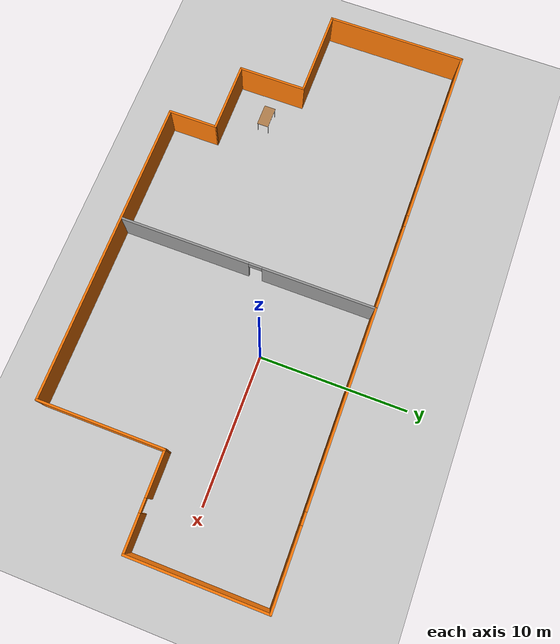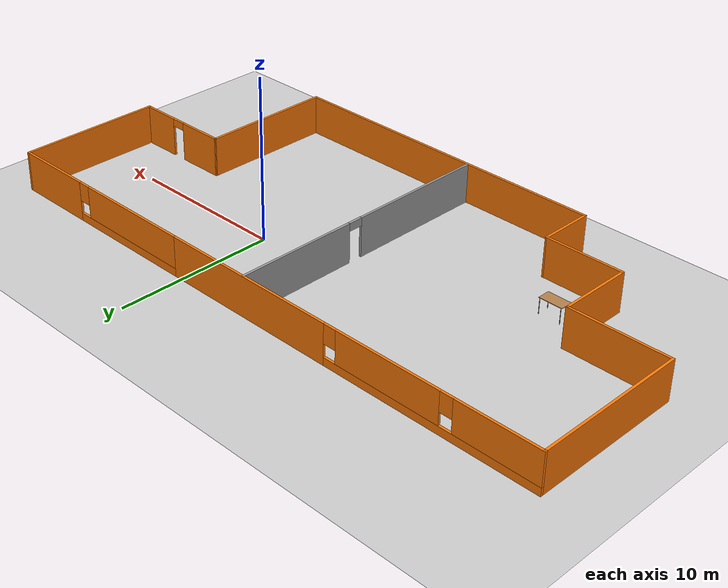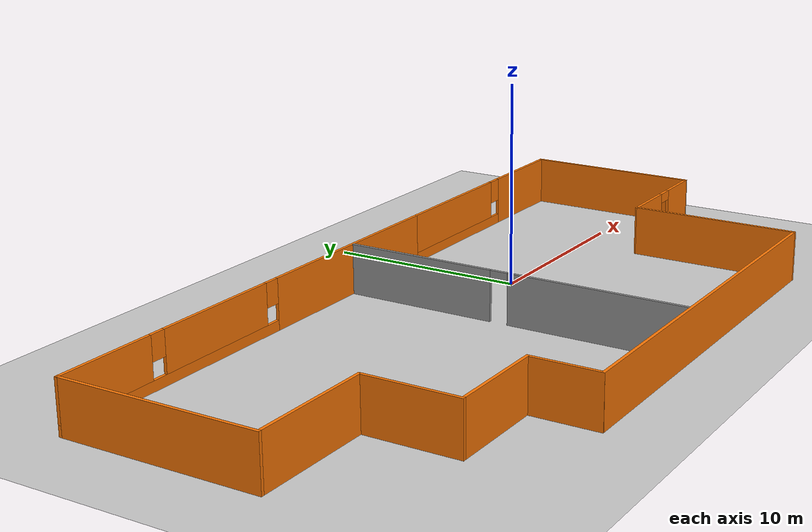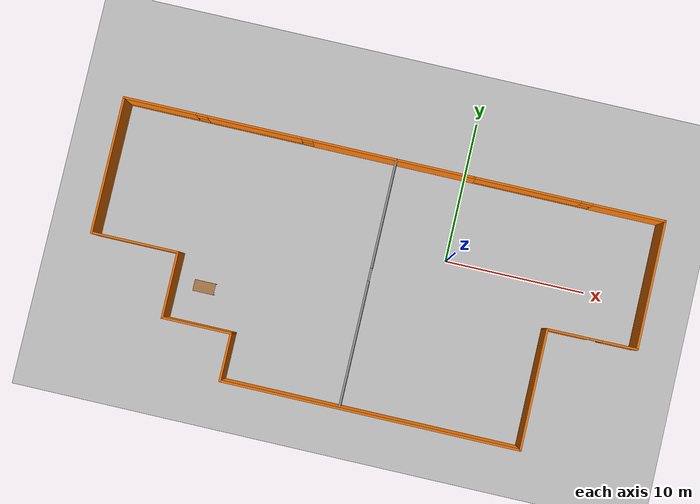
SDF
<sdf version="1.6">
 <world name="default">
  <model name="ground_plane">
   <static>1</static>
   <link name="link">
    <collision name="collision">
     <geometry><plane><normal>0 0 1</normal><size>100 100</size></plane></geometry>
     <surface><friction><ode><mu>100</mu><mu2>50</mu2></ode></friction></surface>
    </collision>
    <visual name="visual">
     <cast_shadows>0</cast_shadows>
     <geometry><plane><normal>0 0 1</normal><size>100 100</size></plane></geometry>
     <material>
      <script><uri>file://media/materials/scripts/gazebo.material</uri><name>Gazebo/Grey</name></script>
     </material>
    </visual>
   </link>
  </model>
  <model name="Building">
   <link name="Wall_0">
    <pose>-6.7329 8.76145 0 0 -0 3.14159</pose>
    <visual name="Wall_0_Visual_5">
     <pose>6.91914 0 1.9 0 -0 0</pose>
     <geometry><box><size>0.8 0.15 1.2</size></box></geometry>
     <material>
      <script><uri>file://media/materials/scripts/gazebo.material</uri><name>Gazebo/Grey</name></script>
      <ambient>0.996078 0.47451 0.0196078 1</ambient>
      <shader type="pixel"/>
      <diffuse>0.7 0.7 0.7 1</diffuse>
      <specular>0.01 0.01 0.01 1</specular>
      <emissive>0 0 0 1</emissive>
     </material>
     <meta><layer>0</layer></meta>
    </visual>
    <visual name="Wall_0_Visual_0">
     <pose>-6.73561 0 1.25 0 -0 0</pose>
     <geometry><box><size>11.5288 0.15 2.5</size></box></geometry>
     <material>
      <script><uri>file://media/materials/scripts/gazebo.material</uri><name>Gazebo/Grey</name></script>
      <ambient>0.996078 0.47451 0.0196078 1</ambient>
      <shader type="pixel"/>
      <diffuse>0.7 0.7 0.7 1</diffuse>
      <specular>0.01 0.01 0.01 1</specular>
      <emissive>0 0 0 1</emissive>
     </material>
     <meta><layer>0</layer></meta>
    </visual>
    <visual name="Wall_0_Visual_2">
     <pose>3.17396 0 1.5 0 -0 0</pose>
     <geometry><box><size>6.69035 0.15 2</size></box></geometry>
     <material>
      <script><uri>file://media/materials/scripts/gazebo.material</uri><name>Gazebo/Grey</name></script>
      <ambient>0.996078 0.47451 0.0196078 1</ambient>
      <shader type="pixel"/>
      <diffuse>0.7 0.7 0.7 1</diffuse>
      <specular>0.01 0.01 0.01 1</specular>
      <emissive>0 0 0 1</emissive>
     </material>
     <meta><layer>0</layer></meta>
    </visual>
    <visual name="Wall_0_Visual_1">
     <pose>5.76439 0 0.25 0 -0 0</pose>
     <geometry><box><size>13.4712 0.15 0.5</size></box></geometry>
     <material>
      <script><uri>file://media/materials/scripts/gazebo.material</uri><name>Gazebo/Grey</name></script>
      <ambient>0.996078 0.47451 0.0196078 1</ambient>
      <shader type="pixel"/>
      <diffuse>0.7 0.7 0.7 1</diffuse>
      <specular>0.01 0.01 0.01 1</specular>
      <emissive>0 0 0 1</emissive>
     </material>
     <meta><layer>0</layer></meta>
    </visual>
    <visual name="Wall_0_Visual_3">
     <pose>9.90957 0 1.5 0 -0 0</pose>
     <geometry><box><size>5.18086 0.15 2</size></box></geometry>
     <material>
      <script><uri>file://media/materials/scripts/gazebo.material</uri><name>Gazebo/Grey</name></script>
      <ambient>0.996078 0.47451 0.0196078 1</ambient>
      <shader type="pixel"/>
      <diffuse>0.7 0.7 0.7 1</diffuse>
      <specular>0.01 0.01 0.01 1</specular>
      <emissive>0 0 0 1</emissive>
     </material>
     <meta><layer>0</layer></meta>
    </visual>
    <visual name="Wall_0_Visual_4">
     <pose>-0.571214 0 1.9 0 -0 0</pose>
     <geometry><box><size>0.8 0.15 1.2</size></box></geometry>
     <material>
      <script><uri>file://media/materials/scripts/gazebo.material</uri><name>Gazebo/Grey</name></script>
      <ambient>0.996078 0.47451 0.0196078 1</ambient>
      <shader type="pixel"/>
      <diffuse>0.7 0.7 0.7 1</diffuse>
      <specular>0.01 0.01 0.01 1</specular>
      <emissive>0 0 0 1</emissive>
     </material>
     <meta><layer>0</layer></meta>
    </visual>
    <collision name="Wall_0_Collision_5">
     <pose>6.91914 0 1.9 0 -0 0</pose>
     <geometry><box><size>0.8 0.15 1.2</size></box></geometry>
     <surface>
      <friction>
       <ode><mu>1</mu><mu2>1</mu2><fdir1>0 0 0</fdir1><slip1>0</slip1><slip2>0</slip2></ode>
       <torsional>
        <coefficient>1</coefficient>
        <patch_radius>0</patch_radius>
        <surface_radius>0</surface_radius>
        <use_patch_radius>1</use_patch_radius>
        <ode><slip>0</slip></ode>
       </torsional>
      </friction>
      <bounce><restitution_coefficient>0</restitution_coefficient><threshold>1e+06</threshold></bounce>
      <contact>
       <collide_without_contact>0</collide_without_contact>
       <collide_without_contact_bitmask>1</collide_without_contact_bitmask>
       <collide_bitmask>1</collide_bitmask>
       <ode>
        <soft_cfm>0</soft_cfm>
        <soft_erp>0.2</soft_erp>
        <kp>1e+13</kp>
        <kd>1</kd>
        <max_vel>0.01</max_vel>
        <min_depth>0</min_depth>
       </ode>
       <bullet>
        <split_impulse>1</split_impulse>
        <split_impulse_penetration_threshold>-0.01</split_impulse_penetration_threshold>
        <soft_cfm>0</soft_cfm>
        <soft_erp>0.2</soft_erp>
        <kp>1e+13</kp>
        <kd>1</kd>
       </bullet>
      </contact>
     </surface>
    </collision>
    <collision name="Wall_0_Collision_3">
     <pose>9.90957 0 1.5 0 -0 0</pose>
     <geometry><box><size>5.18086 0.15 2</size></box></geometry>
     <surface>
      <friction>
       <ode><mu>1</mu><mu2>1</mu2><fdir1>0 0 0</fdir1><slip1>0</slip1><slip2>0</slip2></ode>
       <torsional>
        <coefficient>1</coefficient>
        <patch_radius>0</patch_radius>
        <surface_radius>0</surface_radius>
        <use_patch_radius>1</use_patch_radius>
        <ode><slip>0</slip></ode>
       </torsional>
      </friction>
      <bounce><restitution_coefficient>0</restitution_coefficient><threshold>1e+06</threshold></bounce>
      <contact>
       <collide_without_contact>0</collide_without_contact>
       <collide_without_contact_bitmask>1</collide_without_contact_bitmask>
       <collide_bitmask>1</collide_bitmask>
       <ode>
        <soft_cfm>0</soft_cfm>
        <soft_erp>0.2</soft_erp>
        <kp>1e+13</kp>
        <kd>1</kd>
        <max_vel>0.01</max_vel>
        <min_depth>0</min_depth>
       </ode>
       <bullet>
        <split_impulse>1</split_impulse>
        <split_impulse_penetration_threshold>-0.01</split_impulse_penetration_threshold>
        <soft_cfm>0</soft_cfm>
        <soft_erp>0.2</soft_erp>
        <kp>1e+13</kp>
        <kd>1</kd>
       </bullet>
      </contact>
     </surface>
    </collision>
    <collision name="Wall_0_Collision_2">
     <pose>3.17396 0 1.5 0 -0 0</pose>
     <geometry><box><size>6.69035 0.15 2</size></box></geometry>
     <surface>
      <friction>
       <ode><mu>1</mu><mu2>1</mu2><fdir1>0 0 0</fdir1><slip1>0</slip1><slip2>0</slip2></ode>
       <torsional>
        <coefficient>1</coefficient>
        <patch_radius>0</patch_radius>
        <surface_radius>0</surface_radius>
        <use_patch_radius>1</use_patch_radius>
        <ode><slip>0</slip></ode>
       </torsional>
      </friction>
      <bounce><restitution_coefficient>0</restitution_coefficient><threshold>1e+06</threshold></bounce>
      <contact>
       <collide_without_contact>0</collide_without_contact>
       <collide_without_contact_bitmask>1</collide_without_contact_bitmask>
       <collide_bitmask>1</collide_bitmask>
       <ode>
        <soft_cfm>0</soft_cfm>
        <soft_erp>0.2</soft_erp>
        <kp>1e+13</kp>
        <kd>1</kd>
        <max_vel>0.01</max_vel>
        <min_depth>0</min_depth>
       </ode>
       <bullet>
        <split_impulse>1</split_impulse>
        <split_impulse_penetration_threshold>-0.01</split_impulse_penetration_threshold>
        <soft_cfm>0</soft_cfm>
        <soft_erp>0.2</soft_erp>
        <kp>1e+13</kp>
        <kd>1</kd>
       </bullet>
      </contact>
     </surface>
    </collision>
    <collision name="Wall_0_Collision_4">
     <pose>-0.571214 0 1.9 0 -0 0</pose>
     <geometry><box><size>0.8 0.15 1.2</size></box></geometry>
     <surface>
      <friction>
       <ode><mu>1</mu><mu2>1</mu2><fdir1>0 0 0</fdir1><slip1>0</slip1><slip2>0</slip2></ode>
       <torsional>
        <coefficient>1</coefficient>
        <patch_radius>0</patch_radius>
        <surface_radius>0</surface_radius>
        <use_patch_radius>1</use_patch_radius>
        <ode><slip>0</slip></ode>
       </torsional>
      </friction>
      <bounce><restitution_coefficient>0</restitution_coefficient><threshold>1e+06</threshold></bounce>
      <contact>
       <collide_without_contact>0</collide_without_contact>
       <collide_without_contact_bitmask>1</collide_without_contact_bitmask>
       <collide_bitmask>1</collide_bitmask>
       <ode>
        <soft_cfm>0</soft_cfm>
        <soft_erp>0.2</soft_erp>
        <kp>1e+13</kp>
        <kd>1</kd>
        <max_vel>0.01</max_vel>
        <min_depth>0</min_depth>
       </ode>
       <bullet>
        <split_impulse>1</split_impulse>
        <split_impulse_penetration_threshold>-0.01</split_impulse_penetration_threshold>
        <soft_cfm>0</soft_cfm>
        <soft_erp>0.2</soft_erp>
        <kp>1e+13</kp>
        <kd>1</kd>
       </bullet>
      </contact>
     </surface>
    </collision>
    <collision name="Wall_0_Collision_0">
     <pose>-6.73561 0 1.25 0 -0 0</pose>
     <geometry><box><size>11.5288 0.15 2.5</size></box></geometry>
     <surface>
      <friction>
       <ode><mu>1</mu><mu2>1</mu2><fdir1>0 0 0</fdir1><slip1>0</slip1><slip2>0</slip2></ode>
       <torsional>
        <coefficient>1</coefficient>
        <patch_radius>0</patch_radius>
        <surface_radius>0</surface_radius>
        <use_patch_radius>1</use_patch_radius>
        <ode><slip>0</slip></ode>
       </torsional>
      </friction>
      <bounce><restitution_coefficient>0</restitution_coefficient><threshold>1e+06</threshold></bounce>
      <contact>
       <collide_without_contact>0</collide_without_contact>
       <collide_without_contact_bitmask>1</collide_without_contact_bitmask>
       <collide_bitmask>1</collide_bitmask>
       <ode>
        <soft_cfm>0</soft_cfm>
        <soft_erp>0.2</soft_erp>
        <kp>1e+13</kp>
        <kd>1</kd>
        <max_vel>0.01</max_vel>
        <min_depth>0</min_depth>
       </ode>
       <bullet>
        <split_impulse>1</split_impulse>
        <split_impulse_penetration_threshold>-0.01</split_impulse_penetration_threshold>
        <soft_cfm>0</soft_cfm>
        <soft_erp>0.2</soft_erp>
        <kp>1e+13</kp>
        <kd>1</kd>
       </bullet>
      </contact>
     </surface>
    </collision>
    <collision name="Wall_0_Collision_1">
     <pose>5.76439 0 0.25 0 -0 0</pose>
     <geometry><box><size>13.4712 0.15 0.5</size></box></geometry>
     <surface>
      <friction>
       <ode><mu>1</mu><mu2>1</mu2><fdir1>0 0 0</fdir1><slip1>0</slip1><slip2>0</slip2></ode>
       <torsional>
        <coefficient>1</coefficient>
        <patch_radius>0</patch_radius>
        <surface_radius>0</surface_radius>
        <use_patch_radius>1</use_patch_radius>
        <ode><slip>0</slip></ode>
       </torsional>
      </friction>
      <bounce><restitution_coefficient>0</restitution_coefficient><threshold>1e+06</threshold></bounce>
      <contact>
       <collide_without_contact>0</collide_without_contact>
       <collide_without_contact_bitmask>1</collide_without_contact_bitmask>
       <collide_bitmask>1</collide_bitmask>
       <ode>
        <soft_cfm>0</soft_cfm>
        <soft_erp>0.2</soft_erp>
        <kp>1e+13</kp>
        <kd>1</kd>
        <max_vel>0.01</max_vel>
        <min_depth>0</min_depth>
       </ode>
       <bullet>
        <split_impulse>1</split_impulse>
        <split_impulse_penetration_threshold>-0.01</split_impulse_penetration_threshold>
        <soft_cfm>0</soft_cfm>
        <soft_erp>0.2</soft_erp>
        <kp>1e+13</kp>
        <kd>1</kd>
       </bullet>
      </contact>
     </surface>
    </collision>
   </link>
   <link name="Wall_1">
    <pose>-19.1579 3.96145 0 0 0 -1.5708</pose>
    <visual name="Wall_1_Visual">
     <pose>0 0 1.25 0 -0 0</pose>
     <geometry><box><size>9.75 0.15 2.5</size></box></geometry>
     <material>
      <script><uri>file://media/materials/scripts/gazebo.material</uri><name>Gazebo/Grey</name></script>
      <ambient>0.996078 0.47451 0.0196078 1</ambient>
      <shader type="pixel"/>
      <diffuse>0.7 0.7 0.7 1</diffuse>
      <specular>0.01 0.01 0.01 1</specular>
      <emissive>0 0 0 1</emissive>
     </material>
     <meta><layer>0</layer></meta>
    </visual>
    <collision name="Wall_1_Collision">
     <pose>0 0 1.25 0 -0 0</pose>
     <geometry><box><size>9.75 0.15 2.5</size></box></geometry>
     <surface>
      <friction>
       <ode><mu>1</mu><mu2>1</mu2><fdir1>0 0 0</fdir1><slip1>0</slip1><slip2>0</slip2></ode>
       <torsional>
        <coefficient>1</coefficient>
        <patch_radius>0</patch_radius>
        <surface_radius>0</surface_radius>
        <use_patch_radius>1</use_patch_radius>
        <ode><slip>0</slip></ode>
       </torsional>
      </friction>
      <bounce><restitution_coefficient>0</restitution_coefficient><threshold>1e+06</threshold></bounce>
      <contact>
       <collide_without_contact>0</collide_without_contact>
       <collide_without_contact_bitmask>1</collide_without_contact_bitmask>
       <collide_bitmask>1</collide_bitmask>
       <ode>
        <soft_cfm>0</soft_cfm>
        <soft_erp>0.2</soft_erp>
        <kp>1e+13</kp>
        <kd>1</kd>
        <max_vel>0.01</max_vel>
        <min_depth>0</min_depth>
       </ode>
       <bullet>
        <split_impulse>1</split_impulse>
        <split_impulse_penetration_threshold>-0.01</split_impulse_penetration_threshold>
        <soft_cfm>0</soft_cfm>
        <soft_erp>0.2</soft_erp>
        <kp>1e+13</kp>
        <kd>1</kd>
       </bullet>
      </contact>
     </surface>
    </collision>
   </link>
   <link name="Wall_10">
    <pose>12.4248 8.76151 0 0 0 -3.14159</pose>
    <visual name="Wall_10_Visual_1">
     <pose>2.58746 0 0.25 0 -0 0</pose>
     <geometry><box><size>8.4404 0.15 0.5</size></box></geometry>
     <material>
      <script><uri>file://media/materials/scripts/gazebo.material</uri><name>Gazebo/Grey</name></script>
      <ambient>0.996078 0.47451 0.0196078 1</ambient>
      <shader type="pixel"/>
      <diffuse>0.7 0.7 0.7 1</diffuse>
      <specular>0.01 0.01 0.01 1</specular>
      <emissive>0 0 0 1</emissive>
     </material>
     <meta><layer>0</layer></meta>
    </visual>
    <visual name="Wall_10_Visual_2">
     <pose>2.98746 0 1.5 0 -0 0</pose>
     <geometry><box><size>7.6404 0.15 2</size></box></geometry>
     <material>
      <script><uri>file://media/materials/scripts/gazebo.material</uri><name>Gazebo/Grey</name></script>
      <ambient>0.996078 0.47451 0.0196078 1</ambient>
      <shader type="pixel"/>
      <diffuse>0.7 0.7 0.7 1</diffuse>
      <specular>0.01 0.01 0.01 1</specular>
      <emissive>0 0 0 1</emissive>
     </material>
     <meta><layer>0</layer></meta>
    </visual>
    <visual name="Wall_10_Visual_0">
     <pose>-4.2202 0 1.25 0 -0 0</pose>
     <geometry><box><size>5.17492 0.15 2.5</size></box></geometry>
     <material>
      <script><uri>file://media/materials/scripts/gazebo.material</uri><name>Gazebo/Grey</name></script>
      <ambient>0.996078 0.47451 0.0196078 1</ambient>
      <shader type="pixel"/>
      <diffuse>0.7 0.7 0.7 1</diffuse>
      <specular>0.01 0.01 0.01 1</specular>
      <emissive>0 0 0 1</emissive>
     </material>
     <meta><layer>0</layer></meta>
    </visual>
    <visual name="Wall_10_Visual_3">
     <pose>-1.23274 0 1.9 0 -0 0</pose>
     <geometry><box><size>0.8 0.15 1.2</size></box></geometry>
     <material>
      <script><uri>file://media/materials/scripts/gazebo.material</uri><name>Gazebo/Grey</name></script>
      <ambient>0.996078 0.47451 0.0196078 1</ambient>
      <shader type="pixel"/>
      <diffuse>0.7 0.7 0.7 1</diffuse>
      <specular>0.01 0.01 0.01 1</specular>
      <emissive>0 0 0 1</emissive>
     </material>
     <meta><layer>0</layer></meta>
    </visual>
    <collision name="Wall_10_Collision_3">
     <pose>-1.23274 0 1.9 0 -0 0</pose>
     <geometry><box><size>0.8 0.15 1.2</size></box></geometry>
     <surface>
      <friction>
       <ode><mu>1</mu><mu2>1</mu2><fdir1>0 0 0</fdir1><slip1>0</slip1><slip2>0</slip2></ode>
       <torsional>
        <coefficient>1</coefficient>
        <patch_radius>0</patch_radius>
        <surface_radius>0</surface_radius>
        <use_patch_radius>1</use_patch_radius>
        <ode><slip>0</slip></ode>
       </torsional>
      </friction>
      <bounce><restitution_coefficient>0</restitution_coefficient><threshold>1e+06</threshold></bounce>
      <contact>
       <collide_without_contact>0</collide_without_contact>
       <collide_without_contact_bitmask>1</collide_without_contact_bitmask>
       <collide_bitmask>1</collide_bitmask>
       <ode>
        <soft_cfm>0</soft_cfm>
        <soft_erp>0.2</soft_erp>
        <kp>1e+13</kp>
        <kd>1</kd>
        <max_vel>0.01</max_vel>
        <min_depth>0</min_depth>
       </ode>
       <bullet>
        <split_impulse>1</split_impulse>
        <split_impulse_penetration_threshold>-0.01</split_impulse_penetration_threshold>
        <soft_cfm>0</soft_cfm>
        <soft_erp>0.2</soft_erp>
        <kp>1e+13</kp>
        <kd>1</kd>
       </bullet>
      </contact>
     </surface>
    </collision>
    <collision name="Wall_10_Collision_1">
     <pose>2.58746 0 0.25 0 -0 0</pose>
     <geometry><box><size>8.4404 0.15 0.5</size></box></geometry>
     <surface>
      <friction>
       <ode><mu>1</mu><mu2>1</mu2><fdir1>0 0 0</fdir1><slip1>0</slip1><slip2>0</slip2></ode>
       <torsional>
        <coefficient>1</coefficient>
        <patch_radius>0</patch_radius>
        <surface_radius>0</surface_radius>
        <use_patch_radius>1</use_patch_radius>
        <ode><slip>0</slip></ode>
       </torsional>
      </friction>
      <bounce><restitution_coefficient>0</restitution_coefficient><threshold>1e+06</threshold></bounce>
      <contact>
       <collide_without_contact>0</collide_without_contact>
       <collide_without_contact_bitmask>1</collide_without_contact_bitmask>
       <collide_bitmask>1</collide_bitmask>
       <ode>
        <soft_cfm>0</soft_cfm>
        <soft_erp>0.2</soft_erp>
        <kp>1e+13</kp>
        <kd>1</kd>
        <max_vel>0.01</max_vel>
        <min_depth>0</min_depth>
       </ode>
       <bullet>
        <split_impulse>1</split_impulse>
        <split_impulse_penetration_threshold>-0.01</split_impulse_penetration_threshold>
        <soft_cfm>0</soft_cfm>
        <soft_erp>0.2</soft_erp>
        <kp>1e+13</kp>
        <kd>1</kd>
       </bullet>
      </contact>
     </surface>
    </collision>
    <collision name="Wall_10_Collision_2">
     <pose>2.98746 0 1.5 0 -0 0</pose>
     <geometry><box><size>7.6404 0.15 2</size></box></geometry>
     <surface>
      <friction>
       <ode><mu>1</mu><mu2>1</mu2><fdir1>0 0 0</fdir1><slip1>0</slip1><slip2>0</slip2></ode>
       <torsional>
        <coefficient>1</coefficient>
        <patch_radius>0</patch_radius>
        <surface_radius>0</surface_radius>
        <use_patch_radius>1</use_patch_radius>
        <ode><slip>0</slip></ode>
       </torsional>
      </friction>
      <bounce><restitution_coefficient>0</restitution_coefficient><threshold>1e+06</threshold></bounce>
      <contact>
       <collide_without_contact>0</collide_without_contact>
       <collide_without_contact_bitmask>1</collide_without_contact_bitmask>
       <collide_bitmask>1</collide_bitmask>
       <ode>
        <soft_cfm>0</soft_cfm>
        <soft_erp>0.2</soft_erp>
        <kp>1e+13</kp>
        <kd>1</kd>
        <max_vel>0.01</max_vel>
        <min_depth>0</min_depth>
       </ode>
       <bullet>
        <split_impulse>1</split_impulse>
        <split_impulse_penetration_threshold>-0.01</split_impulse_penetration_threshold>
        <soft_cfm>0</soft_cfm>
        <soft_erp>0.2</soft_erp>
        <kp>1e+13</kp>
        <kd>1</kd>
       </bullet>
      </contact>
     </surface>
    </collision>
    <collision name="Wall_10_Collision_0">
     <pose>-4.2202 0 1.25 0 -0 0</pose>
     <geometry><box><size>5.17492 0.15 2.5</size></box></geometry>
     <surface>
      <friction>
       <ode><mu>1</mu><mu2>1</mu2><fdir1>0 0 0</fdir1><slip1>0</slip1><slip2>0</slip2></ode>
       <torsional>
        <coefficient>1</coefficient>
        <patch_radius>0</patch_radius>
        <surface_radius>0</surface_radius>
        <use_patch_radius>1</use_patch_radius>
        <ode><slip>0</slip></ode>
       </torsional>
      </friction>
      <bounce><restitution_coefficient>0</restitution_coefficient><threshold>1e+06</threshold></bounce>
      <contact>
       <collide_without_contact>0</collide_without_contact>
       <collide_without_contact_bitmask>1</collide_without_contact_bitmask>
       <collide_bitmask>1</collide_bitmask>
       <ode>
        <soft_cfm>0</soft_cfm>
        <soft_erp>0.2</soft_erp>
        <kp>1e+13</kp>
        <kd>1</kd>
        <max_vel>0.01</max_vel>
        <min_depth>0</min_depth>
       </ode>
       <bullet>
        <split_impulse>1</split_impulse>
        <split_impulse_penetration_threshold>-0.01</split_impulse_penetration_threshold>
        <soft_cfm>0</soft_cfm>
        <soft_erp>0.2</soft_erp>
        <kp>1e+13</kp>
        <kd>1</kd>
       </bullet>
      </contact>
     </surface>
    </collision>
   </link>
   <link name="Wall_14">
    <pose>0.157426 0.059562 0 0 0 -1.5708</pose>
    <visual name="Wall_14_Visual_2">
     <pose>-0.57937 0 2.25 0 -0 0</pose>
     <geometry><box><size>0.9 0.15 0.5</size></box></geometry>
     <material>
      <script><uri>file://media/materials/scripts/gazebo.material</uri><name>Gazebo/Grey</name></script>
      <ambient>1 1 1 1</ambient>
      <shader type="pixel"/>
      <diffuse>0.7 0.7 0.7 1</diffuse>
      <specular>0.01 0.01 0.01 1</specular>
      <emissive>0 0 0 1</emissive>
     </material>
     <meta><layer>0</layer></meta>
    </visual>
    <visual name="Wall_14_Visual_0">
     <pose>-4.88969 0 1.25 0 -0 0</pose>
     <geometry><box><size>7.72063 0.15 2.5</size></box></geometry>
     <material>
      <script><uri>file://media/materials/scripts/gazebo.material</uri><name>Gazebo/Grey</name></script>
      <ambient>1 1 1 1</ambient>
      <shader type="pixel"/>
      <diffuse>0.7 0.7 0.7 1</diffuse>
      <specular>0.01 0.01 0.01 1</specular>
      <emissive>0 0 0 1</emissive>
     </material>
     <meta><layer>0</layer></meta>
    </visual>
    <visual name="Wall_14_Visual_1">
     <pose>4.31032 0 1.25 0 -0 0</pose>
     <geometry><box><size>8.87937 0.15 2.5</size></box></geometry>
     <material>
      <script><uri>file://media/materials/scripts/gazebo.material</uri><name>Gazebo/Grey</name></script>
      <ambient>1 1 1 1</ambient>
      <shader type="pixel"/>
      <diffuse>0.7 0.7 0.7 1</diffuse>
      <specular>0.01 0.01 0.01 1</specular>
      <emissive>0 0 0 1</emissive>
     </material>
     <meta><layer>0</layer></meta>
    </visual>
    <collision name="Wall_14_Collision_2">
     <pose>-0.57937 0 2.25 0 -0 0</pose>
     <geometry><box><size>0.9 0.15 0.5</size></box></geometry>
     <surface>
      <friction>
       <ode><mu>1</mu><mu2>1</mu2><fdir1>0 0 0</fdir1><slip1>0</slip1><slip2>0</slip2></ode>
       <torsional>
        <coefficient>1</coefficient>
        <patch_radius>0</patch_radius>
        <surface_radius>0</surface_radius>
        <use_patch_radius>1</use_patch_radius>
        <ode><slip>0</slip></ode>
       </torsional>
      </friction>
      <bounce><restitution_coefficient>0</restitution_coefficient><threshold>1e+06</threshold></bounce>
      <contact>
       <collide_without_contact>0</collide_without_contact>
       <collide_without_contact_bitmask>1</collide_without_contact_bitmask>
       <collide_bitmask>1</collide_bitmask>
       <ode>
        <soft_cfm>0</soft_cfm>
        <soft_erp>0.2</soft_erp>
        <kp>1e+13</kp>
        <kd>1</kd>
        <max_vel>0.01</max_vel>
        <min_depth>0</min_depth>
       </ode>
       <bullet>
        <split_impulse>1</split_impulse>
        <split_impulse_penetration_threshold>-0.01</split_impulse_penetration_threshold>
        <soft_cfm>0</soft_cfm>
        <soft_erp>0.2</soft_erp>
        <kp>1e+13</kp>
        <kd>1</kd>
       </bullet>
      </contact>
     </surface>
    </collision>
    <collision name="Wall_14_Collision_0">
     <pose>-4.88969 0 1.25 0 -0 0</pose>
     <geometry><box><size>7.72063 0.15 2.5</size></box></geometry>
     <surface>
      <friction>
       <ode><mu>1</mu><mu2>1</mu2><fdir1>0 0 0</fdir1><slip1>0</slip1><slip2>0</slip2></ode>
       <torsional>
        <coefficient>1</coefficient>
        <patch_radius>0</patch_radius>
        <surface_radius>0</surface_radius>
        <use_patch_radius>1</use_patch_radius>
        <ode><slip>0</slip></ode>
       </torsional>
      </friction>
      <bounce><restitution_coefficient>0</restitution_coefficient><threshold>1e+06</threshold></bounce>
      <contact>
       <collide_without_contact>0</collide_without_contact>
       <collide_without_contact_bitmask>1</collide_without_contact_bitmask>
       <collide_bitmask>1</collide_bitmask>
       <ode>
        <soft_cfm>0</soft_cfm>
        <soft_erp>0.2</soft_erp>
        <kp>1e+13</kp>
        <kd>1</kd>
        <max_vel>0.01</max_vel>
        <min_depth>0</min_depth>
       </ode>
       <bullet>
        <split_impulse>1</split_impulse>
        <split_impulse_penetration_threshold>-0.01</split_impulse_penetration_threshold>
        <soft_cfm>0</soft_cfm>
        <soft_erp>0.2</soft_erp>
        <kp>1e+13</kp>
        <kd>1</kd>
       </bullet>
      </contact>
     </surface>
    </collision>
    <collision name="Wall_14_Collision_1">
     <pose>4.31032 0 1.25 0 -0 0</pose>
     <geometry><box><size>8.87937 0.15 2.5</size></box></geometry>
     <surface>
      <friction>
       <ode><mu>1</mu><mu2>1</mu2><fdir1>0 0 0</fdir1><slip1>0</slip1><slip2>0</slip2></ode>
       <torsional>
        <coefficient>1</coefficient>
        <patch_radius>0</patch_radius>
        <surface_radius>0</surface_radius>
        <use_patch_radius>1</use_patch_radius>
        <ode><slip>0</slip></ode>
       </torsional>
      </friction>
      <bounce><restitution_coefficient>0</restitution_coefficient><threshold>1e+06</threshold></bounce>
      <contact>
       <collide_without_contact>0</collide_without_contact>
       <collide_without_contact_bitmask>1</collide_without_contact_bitmask>
       <collide_bitmask>1</collide_bitmask>
       <ode>
        <soft_cfm>0</soft_cfm>
        <soft_erp>0.2</soft_erp>
        <kp>1e+13</kp>
        <kd>1</kd>
        <max_vel>0.01</max_vel>
        <min_depth>0</min_depth>
       </ode>
       <bullet>
        <split_impulse>1</split_impulse>
        <split_impulse_penetration_threshold>-0.01</split_impulse_penetration_threshold>
        <soft_cfm>0</soft_cfm>
        <soft_erp>0.2</soft_erp>
        <kp>1e+13</kp>
        <kd>1</kd>
       </bullet>
      </contact>
     </surface>
    </collision>
   </link>
   <link name="Wall_2">
    <pose>-16.1079 -0.838546 0 0 -0 0</pose>
    <visual name="Wall_2_Visual">
     <pose>0 0 1.25 0 -0 0</pose>
     <geometry><box><size>6.25 0.15 2.5</size></box></geometry>
     <material>
      <script><uri>file://media/materials/scripts/gazebo.material</uri><name>Gazebo/Grey</name></script>
      <ambient>0.996078 0.47451 0.0196078 1</ambient>
      <shader type="pixel"/>
      <diffuse>0.7 0.7 0.7 1</diffuse>
      <specular>0.01 0.01 0.01 1</specular>
      <emissive>0 0 0 1</emissive>
     </material>
     <meta><layer>0</layer></meta>
    </visual>
    <collision name="Wall_2_Collision">
     <pose>0 0 1.25 0 -0 0</pose>
     <geometry><box><size>6.25 0.15 2.5</size></box></geometry>
     <surface>
      <friction>
       <ode><mu>1</mu><mu2>1</mu2><fdir1>0 0 0</fdir1><slip1>0</slip1><slip2>0</slip2></ode>
       <torsional>
        <coefficient>1</coefficient>
        <patch_radius>0</patch_radius>
        <surface_radius>0</surface_radius>
        <use_patch_radius>1</use_patch_radius>
        <ode><slip>0</slip></ode>
       </torsional>
      </friction>
      <bounce><restitution_coefficient>0</restitution_coefficient><threshold>1e+06</threshold></bounce>
      <contact>
       <collide_without_contact>0</collide_without_contact>
       <collide_without_contact_bitmask>1</collide_without_contact_bitmask>
       <collide_bitmask>1</collide_bitmask>
       <ode>
        <soft_cfm>0</soft_cfm>
        <soft_erp>0.2</soft_erp>
        <kp>1e+13</kp>
        <kd>1</kd>
        <max_vel>0.01</max_vel>
        <min_depth>0</min_depth>
       </ode>
       <bullet>
        <split_impulse>1</split_impulse>
        <split_impulse_penetration_threshold>-0.01</split_impulse_penetration_threshold>
        <soft_cfm>0</soft_cfm>
        <soft_erp>0.2</soft_erp>
        <kp>1e+13</kp>
        <kd>1</kd>
       </bullet>
      </contact>
     </surface>
    </collision>
   </link>
   <link name="Wall_3">
    <pose>-13.0579 -3.13855 0 0 0 -1.5708</pose>
    <visual name="Wall_3_Visual">
     <pose>0 0 1.25 0 -0 0</pose>
     <geometry><box><size>4.75 0.15 2.5</size></box></geometry>
     <material>
      <script><uri>file://media/materials/scripts/gazebo.material</uri><name>Gazebo/Grey</name></script>
      <ambient>0.996078 0.47451 0.0196078 1</ambient>
      <shader type="pixel"/>
      <diffuse>0.7 0.7 0.7 1</diffuse>
      <specular>0.01 0.01 0.01 1</specular>
      <emissive>0 0 0 1</emissive>
     </material>
     <meta><layer>0</layer></meta>
    </visual>
    <collision name="Wall_3_Collision">
     <pose>0 0 1.25 0 -0 0</pose>
     <geometry><box><size>4.75 0.15 2.5</size></box></geometry>
     <surface>
      <friction>
       <ode><mu>1</mu><mu2>1</mu2><fdir1>0 0 0</fdir1><slip1>0</slip1><slip2>0</slip2></ode>
       <torsional>
        <coefficient>1</coefficient>
        <patch_radius>0</patch_radius>
        <surface_radius>0</surface_radius>
        <use_patch_radius>1</use_patch_radius>
        <ode><slip>0</slip></ode>
       </torsional>
      </friction>
      <bounce><restitution_coefficient>0</restitution_coefficient><threshold>1e+06</threshold></bounce>
      <contact>
       <collide_without_contact>0</collide_without_contact>
       <collide_without_contact_bitmask>1</collide_without_contact_bitmask>
       <collide_bitmask>1</collide_bitmask>
       <ode>
        <soft_cfm>0</soft_cfm>
        <soft_erp>0.2</soft_erp>
        <kp>1e+13</kp>
        <kd>1</kd>
        <max_vel>0.01</max_vel>
        <min_depth>0</min_depth>
       </ode>
       <bullet>
        <split_impulse>1</split_impulse>
        <split_impulse_penetration_threshold>-0.01</split_impulse_penetration_threshold>
        <soft_cfm>0</soft_cfm>
        <soft_erp>0.2</soft_erp>
        <kp>1e+13</kp>
        <kd>1</kd>
       </bullet>
      </contact>
     </surface>
    </collision>
   </link>
   <link name="Wall_4">
    <pose>-10.6329 -5.43855 0 0 -0 0</pose>
    <visual name="Wall_4_Visual">
     <pose>0 0 1.25 0 -0 0</pose>
     <geometry><box><size>5 0.15 2.5</size></box></geometry>
     <material>
      <script><uri>file://media/materials/scripts/gazebo.material</uri><name>Gazebo/Grey</name></script>
      <ambient>0.996078 0.47451 0.0196078 1</ambient>
      <shader type="pixel"/>
      <diffuse>0.7 0.7 0.7 1</diffuse>
      <specular>0.01 0.01 0.01 1</specular>
      <emissive>0 0 0 1</emissive>
     </material>
     <meta><layer>0</layer></meta>
    </visual>
    <collision name="Wall_4_Collision">
     <pose>0 0 1.25 0 -0 0</pose>
     <geometry><box><size>5 0.15 2.5</size></box></geometry>
     <surface>
      <friction>
       <ode><mu>1</mu><mu2>1</mu2><fdir1>0 0 0</fdir1><slip1>0</slip1><slip2>0</slip2></ode>
       <torsional>
        <coefficient>1</coefficient>
        <patch_radius>0</patch_radius>
        <surface_radius>0</surface_radius>
        <use_patch_radius>1</use_patch_radius>
        <ode><slip>0</slip></ode>
       </torsional>
      </friction>
      <bounce><restitution_coefficient>0</restitution_coefficient><threshold>1e+06</threshold></bounce>
      <contact>
       <collide_without_contact>0</collide_without_contact>
       <collide_without_contact_bitmask>1</collide_without_contact_bitmask>
       <collide_bitmask>1</collide_bitmask>
       <ode>
        <soft_cfm>0</soft_cfm>
        <soft_erp>0.2</soft_erp>
        <kp>1e+13</kp>
        <kd>1</kd>
        <max_vel>0.01</max_vel>
        <min_depth>0</min_depth>
       </ode>
       <bullet>
        <split_impulse>1</split_impulse>
        <split_impulse_penetration_threshold>-0.01</split_impulse_penetration_threshold>
        <soft_cfm>0</soft_cfm>
        <soft_erp>0.2</soft_erp>
        <kp>1e+13</kp>
        <kd>1</kd>
       </bullet>
      </contact>
     </surface>
    </collision>
   </link>
   <link name="Wall_5">
    <pose>-8.20774 -7.09999 0 0 0 -1.5707</pose>
    <visual name="Wall_5_Visual">
     <pose>0 0 1.25 0 -0 0</pose>
     <geometry><box><size>3.47289 0.15 2.5</size></box></geometry>
     <material>
      <script><uri>file://media/materials/scripts/gazebo.material</uri><name>Gazebo/Grey</name></script>
      <ambient>0.996078 0.47451 0.0196078 1</ambient>
      <shader type="pixel"/>
      <diffuse>0.7 0.7 0.7 1</diffuse>
      <specular>0.01 0.01 0.01 1</specular>
      <emissive>0 0 0 1</emissive>
     </material>
     <meta><layer>0</layer></meta>
    </visual>
    <collision name="Wall_5_Collision">
     <pose>0 0 1.25 0 -0 0</pose>
     <geometry><box><size>3.47289 0.15 2.5</size></box></geometry>
     <surface>
      <friction>
       <ode><mu>1</mu><mu2>1</mu2><fdir1>0 0 0</fdir1><slip1>0</slip1><slip2>0</slip2></ode>
       <torsional>
        <coefficient>1</coefficient>
        <patch_radius>0</patch_radius>
        <surface_radius>0</surface_radius>
        <use_patch_radius>1</use_patch_radius>
        <ode><slip>0</slip></ode>
       </torsional>
      </friction>
      <bounce><restitution_coefficient>0</restitution_coefficient><threshold>1e+06</threshold></bounce>
      <contact>
       <collide_without_contact>0</collide_without_contact>
       <collide_without_contact_bitmask>1</collide_without_contact_bitmask>
       <collide_bitmask>1</collide_bitmask>
       <ode>
        <soft_cfm>0</soft_cfm>
        <soft_erp>0.2</soft_erp>
        <kp>1e+13</kp>
        <kd>1</kd>
        <max_vel>0.01</max_vel>
        <min_depth>0</min_depth>
       </ode>
       <bullet>
        <split_impulse>1</split_impulse>
        <split_impulse_penetration_threshold>-0.01</split_impulse_penetration_threshold>
        <soft_cfm>0</soft_cfm>
        <soft_erp>0.2</soft_erp>
        <kp>1e+13</kp>
        <kd>1</kd>
       </bullet>
      </contact>
     </surface>
    </collision>
   </link>
   <link name="Wall_6">
    <pose>2.32493 -8.76144 0 0 -0 0</pose>
    <visual name="Wall_6_Visual">
     <pose>0 0 1.25 0 -0 0</pose>
     <geometry><box><size>21.215 0.15 2.5</size></box></geometry>
     <material>
      <script><uri>file://media/materials/scripts/gazebo.material</uri><name>Gazebo/Grey</name></script>
      <ambient>0.996078 0.47451 0.0196078 1</ambient>
      <shader type="pixel"/>
      <diffuse>0.7 0.7 0.7 1</diffuse>
      <specular>0.01 0.01 0.01 1</specular>
      <emissive>0 0 0 1</emissive>
     </material>
     <meta><layer>0</layer></meta>
    </visual>
    <collision name="Wall_6_Collision">
     <pose>0 0 1.25 0 -0 0</pose>
     <geometry><box><size>21.215 0.15 2.5</size></box></geometry>
     <surface>
      <friction>
       <ode><mu>1</mu><mu2>1</mu2><fdir1>0 0 0</fdir1><slip1>0</slip1><slip2>0</slip2></ode>
       <torsional>
        <coefficient>1</coefficient>
        <patch_radius>0</patch_radius>
        <surface_radius>0</surface_radius>
        <use_patch_radius>1</use_patch_radius>
        <ode><slip>0</slip></ode>
       </torsional>
      </friction>
      <bounce><restitution_coefficient>0</restitution_coefficient><threshold>1e+06</threshold></bounce>
      <contact>
       <collide_without_contact>0</collide_without_contact>
       <collide_without_contact_bitmask>1</collide_without_contact_bitmask>
       <collide_bitmask>1</collide_bitmask>
       <ode>
        <soft_cfm>0</soft_cfm>
        <soft_erp>0.2</soft_erp>
        <kp>1e+13</kp>
        <kd>1</kd>
        <max_vel>0.01</max_vel>
        <min_depth>0</min_depth>
       </ode>
       <bullet>
        <split_impulse>1</split_impulse>
        <split_impulse_penetration_threshold>-0.01</split_impulse_penetration_threshold>
        <soft_cfm>0</soft_cfm>
        <soft_erp>0.2</soft_erp>
        <kp>1e+13</kp>
        <kd>1</kd>
       </bullet>
      </contact>
     </surface>
    </collision>
   </link>
   <link name="Wall_7">
    <pose>12.8574 -4.53494 0 0 -0 1.5708</pose>
    <visual name="Wall_7_Visual">
     <pose>0 0 1.25 0 -0 0</pose>
     <geometry><box><size>8.60325 0.15 2.5</size></box></geometry>
     <material>
      <script><uri>file://media/materials/scripts/gazebo.material</uri><name>Gazebo/Grey</name></script>
      <ambient>0.996078 0.47451 0.0196078 1</ambient>
      <shader type="pixel"/>
      <diffuse>0.7 0.7 0.7 1</diffuse>
      <specular>0.01 0.01 0.01 1</specular>
      <emissive>0 0 0 1</emissive>
     </material>
     <meta><layer>0</layer></meta>
    </visual>
    <collision name="Wall_7_Collision">
     <pose>0 0 1.25 0 -0 0</pose>
     <geometry><box><size>8.60325 0.15 2.5</size></box></geometry>
     <surface>
      <friction>
       <ode><mu>1</mu><mu2>1</mu2><fdir1>0 0 0</fdir1><slip1>0</slip1><slip2>0</slip2></ode>
       <torsional>
        <coefficient>1</coefficient>
        <patch_radius>0</patch_radius>
        <surface_radius>0</surface_radius>
        <use_patch_radius>1</use_patch_radius>
        <ode><slip>0</slip></ode>
       </torsional>
      </friction>
      <bounce><restitution_coefficient>0</restitution_coefficient><threshold>1e+06</threshold></bounce>
      <contact>
       <collide_without_contact>0</collide_without_contact>
       <collide_without_contact_bitmask>1</collide_without_contact_bitmask>
       <collide_bitmask>1</collide_bitmask>
       <ode>
        <soft_cfm>0</soft_cfm>
        <soft_erp>0.2</soft_erp>
        <kp>1e+13</kp>
        <kd>1</kd>
        <max_vel>0.01</max_vel>
        <min_depth>0</min_depth>
       </ode>
       <bullet>
        <split_impulse>1</split_impulse>
        <split_impulse_penetration_threshold>-0.01</split_impulse_penetration_threshold>
        <soft_cfm>0</soft_cfm>
        <soft_erp>0.2</soft_erp>
        <kp>1e+13</kp>
        <kd>1</kd>
       </bullet>
      </contact>
     </surface>
    </collision>
   </link>
   <link name="Wall_8">
    <pose>16.0074 -0.288438 0 0 -0 0.006349</pose>
    <visual name="Wall_8_Visual_0">
     <pose>-1.70984 0 1.25 0 -0 0</pose>
     <geometry><box><size>3.03045 0.15 2.5</size></box></geometry>
     <material>
      <script><uri>file://media/materials/scripts/gazebo.material</uri><name>Gazebo/Grey</name></script>
      <ambient>0.996078 0.47451 0.0196078 1</ambient>
      <shader type="pixel"/>
      <diffuse>0.7 0.7 0.7 1</diffuse>
      <specular>0.01 0.01 0.01 1</specular>
      <emissive>0 0 0 1</emissive>
     </material>
     <meta><layer>0</layer></meta>
    </visual>
    <visual name="Wall_8_Visual_1">
     <pose>1.96523 0 1.25 0 -0 0</pose>
     <geometry><box><size>2.51967 0.15 2.5</size></box></geometry>
     <material>
      <script><uri>file://media/materials/scripts/gazebo.material</uri><name>Gazebo/Grey</name></script>
      <ambient>0.996078 0.47451 0.0196078 1</ambient>
      <shader type="pixel"/>
      <diffuse>0.7 0.7 0.7 1</diffuse>
      <specular>0.01 0.01 0.01 1</specular>
      <emissive>0 0 0 1</emissive>
     </material>
     <meta><layer>0</layer></meta>
    </visual>
    <visual name="Wall_8_Visual_2">
     <pose>0.255389 0 2.25 0 -0 0</pose>
     <geometry><box><size>0.9 0.15 0.5</size></box></geometry>
     <material>
      <script><uri>file://media/materials/scripts/gazebo.material</uri><name>Gazebo/Grey</name></script>
      <ambient>0.996078 0.47451 0.0196078 1</ambient>
      <shader type="pixel"/>
      <diffuse>0.7 0.7 0.7 1</diffuse>
      <specular>0.01 0.01 0.01 1</specular>
      <emissive>0 0 0 1</emissive>
     </material>
     <meta><layer>0</layer></meta>
    </visual>
    <collision name="Wall_8_Collision_0">
     <pose>-1.70984 0 1.25 0 -0 0</pose>
     <geometry><box><size>3.03045 0.15 2.5</size></box></geometry>
     <surface>
      <friction>
       <ode><mu>1</mu><mu2>1</mu2><fdir1>0 0 0</fdir1><slip1>0</slip1><slip2>0</slip2></ode>
       <torsional>
        <coefficient>1</coefficient>
        <patch_radius>0</patch_radius>
        <surface_radius>0</surface_radius>
        <use_patch_radius>1</use_patch_radius>
        <ode><slip>0</slip></ode>
       </torsional>
      </friction>
      <bounce><restitution_coefficient>0</restitution_coefficient><threshold>1e+06</threshold></bounce>
      <contact>
       <collide_without_contact>0</collide_without_contact>
       <collide_without_contact_bitmask>1</collide_without_contact_bitmask>
       <collide_bitmask>1</collide_bitmask>
       <ode>
        <soft_cfm>0</soft_cfm>
        <soft_erp>0.2</soft_erp>
        <kp>1e+13</kp>
        <kd>1</kd>
        <max_vel>0.01</max_vel>
        <min_depth>0</min_depth>
       </ode>
       <bullet>
        <split_impulse>1</split_impulse>
        <split_impulse_penetration_threshold>-0.01</split_impulse_penetration_threshold>
        <soft_cfm>0</soft_cfm>
        <soft_erp>0.2</soft_erp>
        <kp>1e+13</kp>
        <kd>1</kd>
       </bullet>
      </contact>
     </surface>
    </collision>
    <collision name="Wall_8_Collision_1">
     <pose>1.96523 0 1.25 0 -0 0</pose>
     <geometry><box><size>2.51967 0.15 2.5</size></box></geometry>
     <surface>
      <friction>
       <ode><mu>1</mu><mu2>1</mu2><fdir1>0 0 0</fdir1><slip1>0</slip1><slip2>0</slip2></ode>
       <torsional>
        <coefficient>1</coefficient>
        <patch_radius>0</patch_radius>
        <surface_radius>0</surface_radius>
        <use_patch_radius>1</use_patch_radius>
        <ode><slip>0</slip></ode>
       </torsional>
      </friction>
      <bounce><restitution_coefficient>0</restitution_coefficient><threshold>1e+06</threshold></bounce>
      <contact>
       <collide_without_contact>0</collide_without_contact>
       <collide_without_contact_bitmask>1</collide_without_contact_bitmask>
       <collide_bitmask>1</collide_bitmask>
       <ode>
        <soft_cfm>0</soft_cfm>
        <soft_erp>0.2</soft_erp>
        <kp>1e+13</kp>
        <kd>1</kd>
        <max_vel>0.01</max_vel>
        <min_depth>0</min_depth>
       </ode>
       <bullet>
        <split_impulse>1</split_impulse>
        <split_impulse_penetration_threshold>-0.01</split_impulse_penetration_threshold>
        <soft_cfm>0</soft_cfm>
        <soft_erp>0.2</soft_erp>
        <kp>1e+13</kp>
        <kd>1</kd>
       </bullet>
      </contact>
     </surface>
    </collision>
    <collision name="Wall_8_Collision_2">
     <pose>0.255389 0 2.25 0 -0 0</pose>
     <geometry><box><size>0.9 0.15 0.5</size></box></geometry>
     <surface>
      <friction>
       <ode><mu>1</mu><mu2>1</mu2><fdir1>0 0 0</fdir1><slip1>0</slip1><slip2>0</slip2></ode>
       <torsional>
        <coefficient>1</coefficient>
        <patch_radius>0</patch_radius>
        <surface_radius>0</surface_radius>
        <use_patch_radius>1</use_patch_radius>
        <ode><slip>0</slip></ode>
       </torsional>
      </friction>
      <bounce><restitution_coefficient>0</restitution_coefficient><threshold>1e+06</threshold></bounce>
      <contact>
       <collide_without_contact>0</collide_without_contact>
       <collide_without_contact_bitmask>1</collide_without_contact_bitmask>
       <collide_bitmask>1</collide_bitmask>
       <ode>
        <soft_cfm>0</soft_cfm>
        <soft_erp>0.2</soft_erp>
        <kp>1e+13</kp>
        <kd>1</kd>
        <max_vel>0.01</max_vel>
        <min_depth>0</min_depth>
       </ode>
       <bullet>
        <split_impulse>1</split_impulse>
        <split_impulse_penetration_threshold>-0.01</split_impulse_penetration_threshold>
        <soft_cfm>0</soft_cfm>
        <soft_erp>0.2</soft_erp>
        <kp>1e+13</kp>
        <kd>1</kd>
       </bullet>
      </contact>
     </surface>
    </collision>
   </link>
   <link name="Wall_9">
    <pose>19.1574 4.24656 0 0 -0 1.5708</pose>
    <visual name="Wall_9_Visual">
     <pose>0 0 1.25 0 -0 0</pose>
     <geometry><box><size>9.18 0.15 2.5</size></box></geometry>
     <material>
      <script><uri>file://media/materials/scripts/gazebo.material</uri><name>Gazebo/Grey</name></script>
      <ambient>0.996078 0.47451 0.0196078 1</ambient>
      <shader type="pixel"/>
      <diffuse>0.7 0.7 0.7 1</diffuse>
      <specular>0.01 0.01 0.01 1</specular>
      <emissive>0 0 0 1</emissive>
     </material>
     <meta><layer>0</layer></meta>
    </visual>
    <collision name="Wall_9_Collision">
     <pose>0 0 1.25 0 -0 0</pose>
     <geometry><box><size>9.18 0.15 2.5</size></box></geometry>
     <surface>
      <friction>
       <ode><mu>1</mu><mu2>1</mu2><fdir1>0 0 0</fdir1><slip1>0</slip1><slip2>0</slip2></ode>
       <torsional>
        <coefficient>1</coefficient>
        <patch_radius>0</patch_radius>
        <surface_radius>0</surface_radius>
        <use_patch_radius>1</use_patch_radius>
        <ode><slip>0</slip></ode>
       </torsional>
      </friction>
      <bounce><restitution_coefficient>0</restitution_coefficient><threshold>1e+06</threshold></bounce>
      <contact>
       <collide_without_contact>0</collide_without_contact>
       <collide_without_contact_bitmask>1</collide_without_contact_bitmask>
       <collide_bitmask>1</collide_bitmask>
       <ode>
        <soft_cfm>0</soft_cfm>
        <soft_erp>0.2</soft_erp>
        <kp>1e+13</kp>
        <kd>1</kd>
        <max_vel>0.01</max_vel>
        <min_depth>0</min_depth>
       </ode>
       <bullet>
        <split_impulse>1</split_impulse>
        <split_impulse_penetration_threshold>-0.01</split_impulse_penetration_threshold>
        <soft_cfm>0</soft_cfm>
        <soft_erp>0.2</soft_erp>
        <kp>1e+13</kp>
        <kd>1</kd>
       </bullet>
      </contact>
     </surface>
    </collision>
   </link>
   <static>1</static>
   <pose>-5.1574 -2.83856 0 0 -0 0</pose>
  </model>
  <model name="table">
   <static>1</static>
   <link name="link">
    <collision name="surface">
     <pose>0 0 1 0 -0 0</pose>
     <geometry><box><size>1.5 0.8 0.03</size></box></geometry>
     <surface><friction><ode><mu>0.6</mu><mu2>0.6</mu2></ode></friction></surface>
    </collision>
    <visual name="visual1">
     <pose>0 0 1 0 -0 0</pose>
     <geometry><box><size>1.5 0.8 0.03</size></box></geometry>
     <material>
      <script><uri>file://media/materials/scripts/gazebo.material</uri><name>Gazebo/Wood</name></script>
     </material>
    </visual>
    <collision name="front_left_leg">
     <pose>0.68 0.38 0.5 0 -0 0</pose>
     <geometry><cylinder><radius>0.02</radius><length>1</length></cylinder></geometry>
    </collision>
    <visual name="front_left_leg">
     <pose>0.68 0.38 0.5 0 -0 0</pose>
     <geometry><cylinder><radius>0.02</radius><length>1</length></cylinder></geometry>
     <material>
      <script><uri>file://media/materials/scripts/gazebo.material</uri><name>Gazebo/Grey</name></script>
     </material>
    </visual>
    <collision name="front_right_leg">
     <pose>0.68 -0.38 0.5 0 -0 0</pose>
     <geometry><cylinder><radius>0.02</radius><length>1</length></cylinder></geometry>
    </collision>
    <visual name="front_right_leg">
     <pose>0.68 -0.38 0.5 0 -0 0</pose>
     <geometry><cylinder><radius>0.02</radius><length>1</length></cylinder></geometry>
     <material>
      <script><uri>file://media/materials/scripts/gazebo.material</uri><name>Gazebo/Grey</name></script>
     </material>
    </visual>
    <collision name="back_right_leg">
     <pose>-0.68 -0.38 0.5 0 -0 0</pose>
     <geometry><cylinder><radius>0.02</radius><length>1</length></cylinder></geometry>
    </collision>
    <visual name="back_right_leg">
     <pose>-0.68 -0.38 0.5 0 -0 0</pose>
     <geometry><cylinder><radius>0.02</radius><length>1</length></cylinder></geometry>
     <material>
      <script><uri>file://media/materials/scripts/gazebo.material</uri><name>Gazebo/Grey</name></script>
     </material>
    </visual>
    <collision name="back_left_leg">
     <pose>-0.68 0.38 0.5 0 -0 0</pose>
     <geometry><cylinder><radius>0.02</radius><length>1</length></cylinder></geometry>
    </collision>
    <visual name="back_left_leg">
     <pose>-0.68 0.38 0.5 0 -0 0</pose>
     <geometry><cylinder><radius>0.02</radius><length>1</length></cylinder></geometry>
     <material>
      <script><uri>file://media/materials/scripts/gazebo.material</uri><name>Gazebo/Grey</name></script>
     </material>
    </visual>
   </link>
   <pose>-16.1146 -5.60929 0 0 -0 0</pose>
  </model>
 </world>
</sdf>
